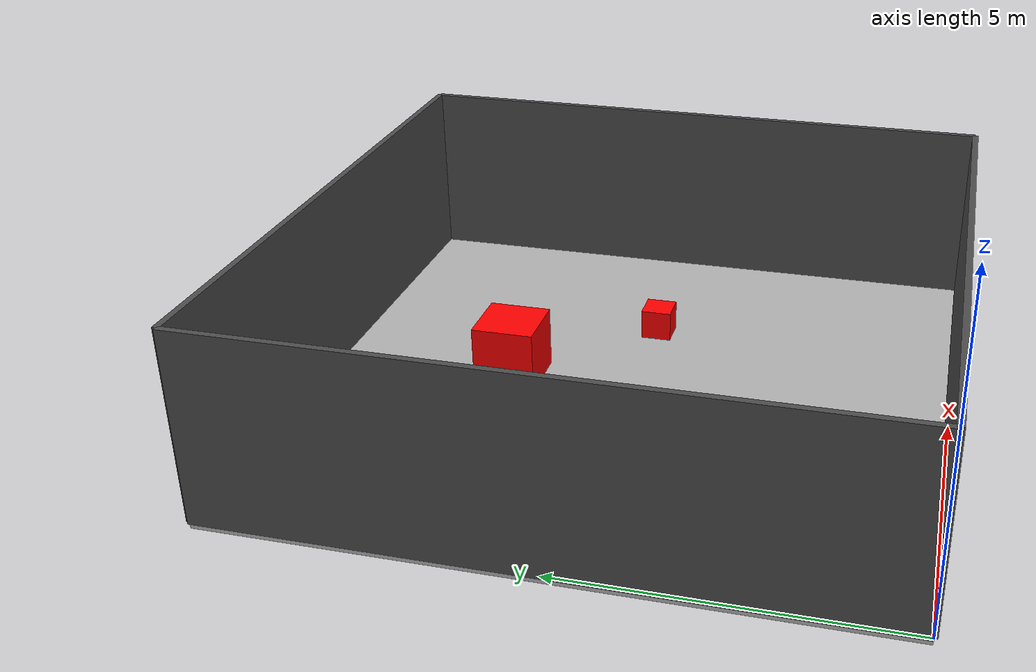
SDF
<?xml version='1.0'?>
<sdf version='1.7'>
  <model name='TYwalls'>

    <!-- Floor: 10x10, starts at (0,0), centered at (5,5) -->
    <link name="floor">
      <pose>5 5 -0.05 0 0 0</pose>
      <collision name="floor_collision">
        <geometry><box><size>10 10 0.1</size></box></geometry>
      </collision>
      <visual name="floor_visual">
        <geometry><box><size>10 10 0.1</size></box></geometry>
        <material>
          <ambient>0.7 0.7 0.7 1</ambient>
          <diffuse>0.7 0.7 0.7 1</diffuse>
        </material>
      </visual>
    </link>

    <!-- Wall: bottom (Y = 0), centered at Y = 0 -->
    <link name="wall_bottom">
      <pose>5 0 1.5 0 0 0</pose>
      <collision name="collision"><geometry><box><size>10 0.1 3</size></box></geometry></collision>
      <visual name="visual">
        <cast_shadows>0</cast_shadows>
        <geometry><box><size>10 0.1 3</size></box></geometry>
        <material>
          <ambient>0.3 0.3 0.3 1</ambient>
          <diffuse>0.3 0.3 0.3 1</diffuse>
        </material>
      </visual>
    </link>

    <!-- Wall: top (Y = 10) -->
    <link name="wall_top">
      <pose>5 10 1.5 0 0 0</pose>
      <collision name="collision"><geometry><box><size>10 0.1 3</size></box></geometry></collision>
      <visual name="visual">
        <cast_shadows>0</cast_shadows>
        <geometry><box><size>10 0.1 3</size></box></geometry>
        <material>
          <ambient>0.3 0.3 0.3 1</ambient>
          <diffuse>0.3 0.3 0.3 1</diffuse>
        </material>
      </visual>
    </link>

    <!-- Wall: left (X = 0) -->
    <link name="wall_left">
      <pose>0 5 1.5 0 0 0</pose>
      <collision name="collision"><geometry><box><size>0.1 10 3</size></box></geometry></collision>
      <visual name="visual">
        <cast_shadows>0</cast_shadows>
        <geometry><box><size>0.1 10 3</size></box></geometry>
        <material>
          <ambient>0.3 0.3 0.3 1</ambient>
          <diffuse>0.3 0.3 0.3 1</diffuse>
        </material>
      </visual>
    </link>

    <!-- Wall: right (X = 10) -->
    <link name="wall_right">
      <pose>10 5 1.5 0 0 0</pose>
      <collision name="collision"><geometry><box><size>0.1 10 3</size></box></geometry></collision>
      <visual name="visual">
        <cast_shadows>0</cast_shadows>
        <geometry><box><size>0.1 10 3</size></box></geometry>
        <material>
          <ambient>0.3 0.3 0.3 1</ambient>
          <diffuse>0.3 0.3 0.3 1</diffuse>
        </material>
      </visual>
    </link>

    <!-- Small red box at (7, 5), size 0.5 -->
    <link name="box_small">
      <pose>7 5 0.25 0 0 0</pose>
      <collision name="collision"><geometry><box><size>0.5 0.5 0.5</size></box></geometry></collision>
      <visual name="visual">
        <cast_shadows>0</cast_shadows>
        <geometry><box><size>0.5 0.5 0.5</size></box></geometry>
        <material>
          <ambient>0.5 0 0 1</ambient>
          <diffuse>1 0 0 1</diffuse>
          <specular>0.1 0.1 0.1 1</specular>
        </material>
      </visual>
    </link>

    <!-- Large red box at (5, 7), size 1 -->
    <link name="box_large">
      <pose>5 7 0.5 0 0 0</pose>
      <collision name="collision"><geometry><box><size>1 1 1</size></box></geometry></collision>
      <visual name="visual">
        <cast_shadows>0</cast_shadows>
        <geometry><box><size>1 1 1</size></box></geometry>
        <material>
          <ambient>0.5 0 0 1</ambient>
          <diffuse>1 0 0 1</diffuse>
          <specular>0.1 0.1 0.1 1</specular>
        </material>
      </visual>
    </link>

    <static>1</static>
  </model>
</sdf>
